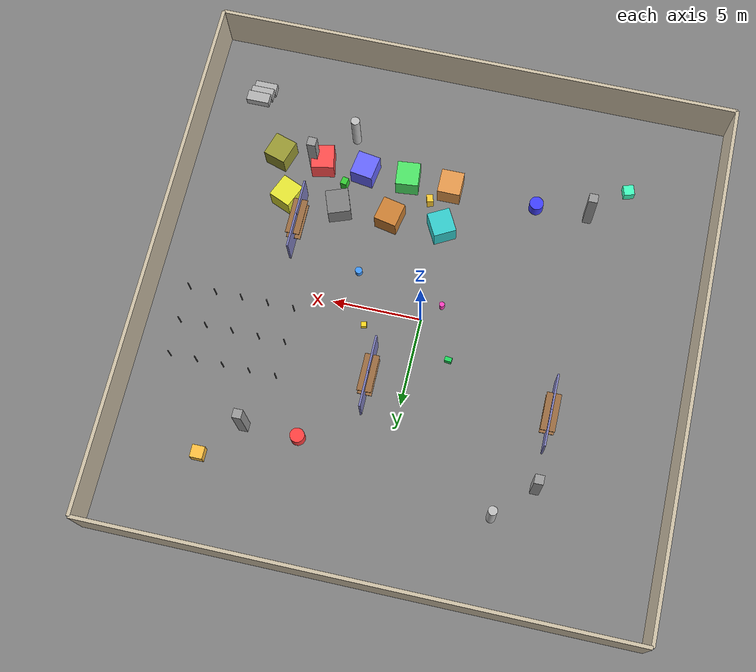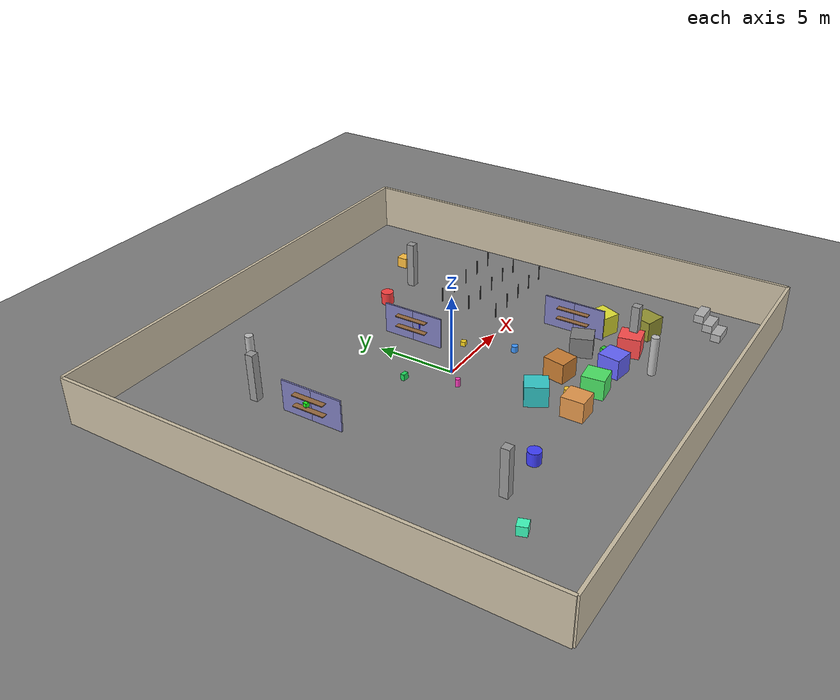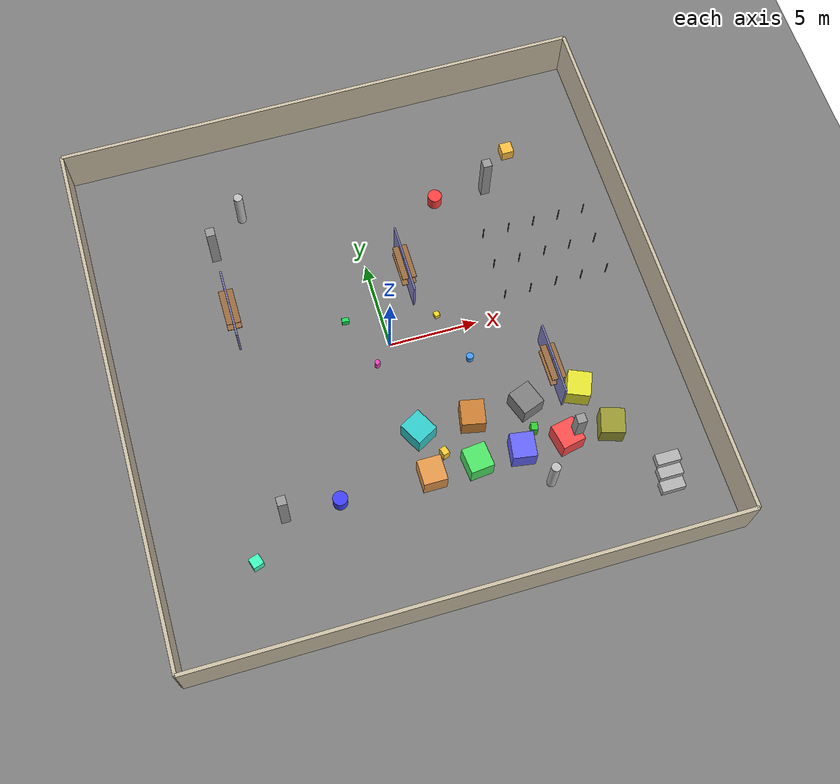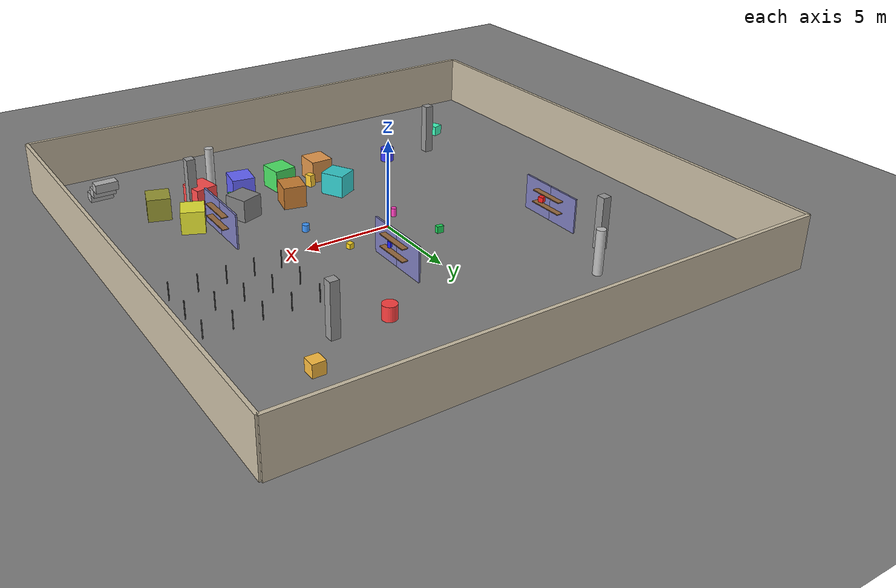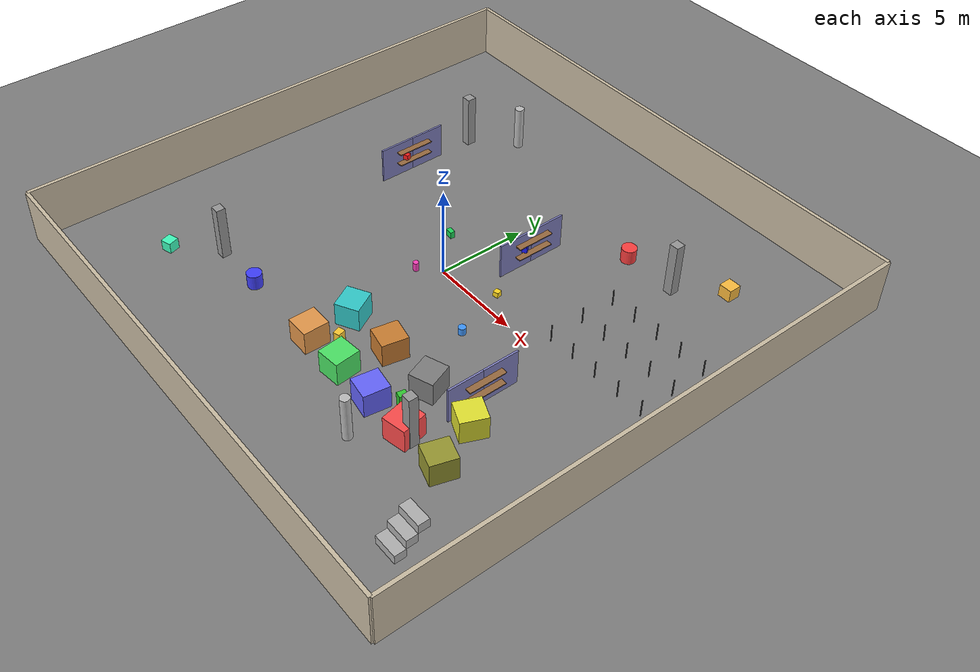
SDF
<?xml version="1.0" ?>
<sdf version="1.8">
  <world name="warehouse">
    <physics name="1ms" type="bullet-featherstone">
      <max_step_size>0.002</max_step_size>
      <real_time_factor>1.0</real_time_factor>
    </physics>

    <plugin filename="gz-sim-physics-system" name="gz::sim::systems::Physics"></plugin>
    <plugin filename="gz-sim-sensors-system" name="gz::sim::systems::Sensors">
      <render_engine>ogre</render_engine>
    </plugin>
    <plugin filename="gz-sim-imu-system" name="gz::sim::systems::Imu"></plugin>
    <plugin filename="gz-sim-user-commands-system" name="gz::sim::systems::UserCommands"></plugin>
    <plugin filename="gz-sim-scene-broadcaster-system" name="gz::sim::systems::SceneBroadcaster"></plugin>
    <plugin filename="gz-sim-navsat-system" name="gz::sim::systems::NavSat"></plugin>

    <light type="directional" name="sun">
      <cast_shadows>true</cast_shadows>
      <pose>0 0 15 0 0 0</pose>
      <diffuse>0.9 0.9 0.9 1</diffuse>
      <specular>0.2 0.2 0.2 1</specular>
      <attenuation>
        <range>1000</range>
        <constant>0.9</constant>
        <linear>0.01</linear>
        <quadratic>0.001</quadratic>
      </attenuation>
      <direction>-0.4 0.3 -1</direction>
    </light>

    <!-- Ground -->
    <model name="ground_plane">
      <static>true</static>
      <link name="link">
        <collision name="collision">
          <geometry><plane><normal>0 0 1</normal><size>200 200</size></plane></geometry>
        </collision>
        <visual name="visual">
          <geometry><plane><normal>0 0 1</normal><size>200 200</size></plane></geometry>
          <material>
            <ambient>0.3 0.3 0.3 1</ambient>
            <diffuse>0.5 0.5 0.5 1</diffuse>
          </material>
        </visual>
      </link>
    </model>

    <!-- ===== Warehouse Walls ===== -->
    <model name="wall_north"><static>true</static><pose>0 15 1.5 0 0 0</pose>
      <link name="link"><collision name="c"><geometry><box><size>30 0.2 3</size></box></geometry></collision>
      <visual name="v"><geometry><box><size>30 0.2 3</size></box></geometry>
      <material><ambient>0.7 0.65 0.55 1</ambient><diffuse>0.8 0.75 0.65 1</diffuse></material></visual></link></model>

    <model name="wall_south"><static>true</static><pose>0 -15 1.5 0 0 0</pose>
      <link name="link"><collision name="c"><geometry><box><size>30 0.2 3</size></box></geometry></collision>
      <visual name="v"><geometry><box><size>30 0.2 3</size></box></geometry>
      <material><ambient>0.7 0.65 0.55 1</ambient><diffuse>0.8 0.75 0.65 1</diffuse></material></visual></link></model>

    <model name="wall_east"><static>true</static><pose>15 0 1.5 0 0 0</pose>
      <link name="link"><collision name="c"><geometry><box><size>0.2 30 3</size></box></geometry></collision>
      <visual name="v"><geometry><box><size>0.2 30 3</size></box></geometry>
      <material><ambient>0.7 0.65 0.55 1</ambient><diffuse>0.8 0.75 0.65 1</diffuse></material></visual></link></model>

    <model name="wall_west"><static>true</static><pose>-15 0 1.5 0 0 0</pose>
      <link name="link"><collision name="c"><geometry><box><size>0.2 30 3</size></box></geometry></collision>
      <visual name="v"><geometry><box><size>0.2 30 3</size></box></geometry>
      <material><ambient>0.7 0.65 0.55 1</ambient><diffuse>0.8 0.75 0.65 1</diffuse></material></visual></link></model>

    <!-- ===== Shelving Racks (rows of shelves for LiDAR features) ===== -->
    <!-- Row 1 -->
    <model name="rack1_col1"><static>true</static><pose>-8 5 1.0 0 0 0</pose>
      <link name="link"><collision name="c"><geometry><box><size>0.1 2 2</size></box></geometry></collision>
      <visual name="v"><geometry><box><size>0.1 2 2</size></box></geometry>
      <material><ambient>0.4 0.4 0.6 1</ambient><diffuse>0.5 0.5 0.75 1</diffuse></material></visual></link></model>
    <model name="rack1_col2"><static>true</static><pose>-8 3 1.0 0 0 0</pose>
      <link name="link"><collision name="c"><geometry><box><size>0.1 2 2</size></box></geometry></collision>
      <visual name="v"><geometry><box><size>0.1 2 2</size></box></geometry>
      <material><ambient>0.4 0.4 0.6 1</ambient><diffuse>0.5 0.5 0.75 1</diffuse></material></visual></link></model>
    <model name="rack1_shelf1"><static>true</static><pose>-8 4 0.8 0 0 0</pose>
      <link name="link"><collision name="c"><geometry><box><size>0.8 2.1 0.05</size></box></geometry></collision>
      <visual name="v"><geometry><box><size>0.8 2.1 0.05</size></box></geometry>
      <material><ambient>0.5 0.35 0.2 1</ambient><diffuse>0.6 0.42 0.25 1</diffuse></material></visual></link></model>
    <model name="rack1_shelf2"><static>true</static><pose>-8 4 1.5 0 0 0</pose>
      <link name="link"><collision name="c"><geometry><box><size>0.8 2.1 0.05</size></box></geometry></collision>
      <visual name="v"><geometry><box><size>0.8 2.1 0.05</size></box></geometry>
      <material><ambient>0.5 0.35 0.2 1</ambient><diffuse>0.6 0.42 0.25 1</diffuse></material></visual></link></model>

    <!-- Row 2 -->
    <model name="rack2_col1"><static>true</static><pose>2 5 1.0 0 0 0</pose>
      <link name="link"><collision name="c"><geometry><box><size>0.1 2 2</size></box></geometry></collision>
      <visual name="v"><geometry><box><size>0.1 2 2</size></box></geometry>
      <material><ambient>0.4 0.4 0.6 1</ambient><diffuse>0.5 0.5 0.75 1</diffuse></material></visual></link></model>
    <model name="rack2_col2"><static>true</static><pose>2 3 1.0 0 0 0</pose>
      <link name="link"><collision name="c"><geometry><box><size>0.1 2 2</size></box></geometry></collision>
      <visual name="v"><geometry><box><size>0.1 2 2</size></box></geometry>
      <material><ambient>0.4 0.4 0.6 1</ambient><diffuse>0.5 0.5 0.75 1</diffuse></material></visual></link></model>
    <model name="rack2_shelf1"><static>true</static><pose>2 4 0.8 0 0 0</pose>
      <link name="link"><collision name="c"><geometry><box><size>0.8 2.1 0.05</size></box></geometry></collision>
      <visual name="v"><geometry><box><size>0.8 2.1 0.05</size></box></geometry>
      <material><ambient>0.5 0.35 0.2 1</ambient><diffuse>0.6 0.42 0.25 1</diffuse></material></visual></link></model>
    <model name="rack2_shelf2"><static>true</static><pose>2 4 1.5 0 0 0</pose>
      <link name="link"><collision name="c"><geometry><box><size>0.8 2.1 0.05</size></box></geometry></collision>
      <visual name="v"><geometry><box><size>0.8 2.1 0.05</size></box></geometry>
      <material><ambient>0.5 0.35 0.2 1</ambient><diffuse>0.6 0.42 0.25 1</diffuse></material></visual></link></model>

    <!-- Row 3 (opposite side) -->
    <model name="rack3_col1"><static>true</static><pose>8 -5 1.0 0 0 0</pose>
      <link name="link"><collision name="c"><geometry><box><size>0.1 2 2</size></box></geometry></collision>
      <visual name="v"><geometry><box><size>0.1 2 2</size></box></geometry>
      <material><ambient>0.4 0.4 0.6 1</ambient><diffuse>0.5 0.5 0.75 1</diffuse></material></visual></link></model>
    <model name="rack3_col2"><static>true</static><pose>8 -3 1.0 0 0 0</pose>
      <link name="link"><collision name="c"><geometry><box><size>0.1 2 2</size></box></geometry></collision>
      <visual name="v"><geometry><box><size>0.1 2 2</size></box></geometry>
      <material><ambient>0.4 0.4 0.6 1</ambient><diffuse>0.5 0.5 0.75 1</diffuse></material></visual></link></model>
    <model name="rack3_shelf1"><static>true</static><pose>8 -4 0.8 0 0 0</pose>
      <link name="link"><collision name="c"><geometry><box><size>0.8 2.1 0.05</size></box></geometry></collision>
      <visual name="v"><geometry><box><size>0.8 2.1 0.05</size></box></geometry>
      <material><ambient>0.5 0.35 0.2 1</ambient><diffuse>0.6 0.42 0.25 1</diffuse></material></visual></link></model>
    <model name="rack3_shelf2"><static>true</static><pose>8 -4 1.5 0 0 0</pose>
      <link name="link"><collision name="c"><geometry><box><size>0.8 2.1 0.05</size></box></geometry></collision>
      <visual name="v"><geometry><box><size>0.8 2.1 0.05</size></box></geometry>
      <material><ambient>0.5 0.35 0.2 1</ambient><diffuse>0.6 0.42 0.25 1</diffuse></material></visual></link></model>

    <!-- ===== Boxes on shelves (visual features for camera + LiDAR) ===== -->
    <model name="box_shelf1"><static>true</static><pose>-7.8 3.5 1.1 0 0 0.3</pose>
      <link name="link"><collision name="c"><geometry><box><size>0.3 0.3 0.3</size></box></geometry></collision>
      <visual name="v"><geometry><box><size>0.3 0.3 0.3</size></box></geometry>
      <material><ambient>0.9 0.1 0.1 1</ambient><diffuse>1.0 0.12 0.12 1</diffuse></material></visual></link></model>
    <model name="box_shelf2"><static>true</static><pose>-8.2 4.2 1.1 0 0 -0.2</pose>
      <link name="link"><collision name="c"><geometry><box><size>0.25 0.25 0.25</size></box></geometry></collision>
      <visual name="v"><geometry><box><size>0.25 0.25 0.25</size></box></geometry>
      <material><ambient>0.1 0.8 0.1 1</ambient><diffuse>0.12 1.0 0.12 1</diffuse></material></visual></link></model>
    <model name="box_shelf3"><static>true</static><pose>2.1 3.5 1.1 0 0 0.5</pose>
      <link name="link"><collision name="c"><geometry><box><size>0.3 0.2 0.35</size></box></geometry></collision>
      <visual name="v"><geometry><box><size>0.3 0.2 0.35</size></box></geometry>
      <material><ambient>0.1 0.1 0.9 1</ambient><diffuse>0.12 0.12 1.0 1</diffuse></material></visual></link></model>

    <!-- ===== Scattered objects for LiDAR features ===== -->
    <model name="barrel_red"><static>true</static><pose>5 8 0.4 0 0 0</pose>
      <link name="link"><collision name="c"><geometry><cylinder><radius>0.4</radius><length>0.8</length></cylinder></geometry></collision>
      <visual name="v"><geometry><cylinder><radius>0.4</radius><length>0.8</length></cylinder></geometry>
      <material><ambient>0.9 0.2 0.2 1</ambient><diffuse>1.0 0.25 0.25 1</diffuse></material></visual></link></model>
    <model name="barrel_blue"><static>true</static><pose>-5 -8 0.4 0 0 0</pose>
      <link name="link"><collision name="c"><geometry><cylinder><radius>0.4</radius><length>0.8</length></cylinder></geometry></collision>
      <visual name="v"><geometry><cylinder><radius>0.4</radius><length>0.8</length></cylinder></geometry>
      <material><ambient>0.2 0.2 0.9 1</ambient><diffuse>0.25 0.25 1.0 1</diffuse></material></visual></link></model>

    <model name="crate1"><static>true</static><pose>10 10 0.35 0 0 0</pose>
      <link name="link"><collision name="c"><geometry><box><size>0.7 0.7 0.7</size></box></geometry></collision>
      <visual name="v"><geometry><box><size>0.7 0.7 0.7</size></box></geometry>
      <material><ambient>0.8 0.6 0.2 1</ambient><diffuse>1.0 0.75 0.25 1</diffuse></material></visual></link></model>
    <model name="crate2"><static>true</static><pose>-10 -10 0.35 0 0 0.3</pose>
      <link name="link"><collision name="c"><geometry><box><size>0.6 0.6 0.6</size></box></geometry></collision>
      <visual name="v"><geometry><box><size>0.6 0.6 0.6</size></box></geometry>
      <material><ambient>0.2 0.8 0.6 1</ambient><diffuse>0.25 1.0 0.75 1</diffuse></material></visual></link></model>

    <model name="pillar1"><static>true</static><pose>6 -10 1.25 0 0 0</pose>
      <link name="link"><collision name="c"><geometry><cylinder><radius>0.25</radius><length>2.5</length></cylinder></geometry></collision>
      <visual name="v"><geometry><cylinder><radius>0.25</radius><length>2.5</length></cylinder></geometry>
      <material><ambient>0.6 0.6 0.6 1</ambient><diffuse>0.75 0.75 0.75 1</diffuse></material></visual></link></model>
    <model name="pillar2"><static>true</static><pose>-6 10 1.25 0 0 0</pose>
      <link name="link"><collision name="c"><geometry><cylinder><radius>0.25</radius><length>2.5</length></cylinder></geometry></collision>
      <visual name="v"><geometry><cylinder><radius>0.25</radius><length>2.5</length></cylinder></geometry>
      <material><ambient>0.6 0.6 0.6 1</ambient><diffuse>0.75 0.75 0.75 1</diffuse></material></visual></link></model>

    <!-- Small scattered objects near center for close-range features -->
    <model name="small_box1"><static>true</static><pose>3 1 0.15 0 0 0.2</pose>
      <link name="link"><collision name="c"><geometry><box><size>0.3 0.3 0.3</size></box></geometry></collision>
      <visual name="v"><geometry><box><size>0.3 0.3 0.3</size></box></geometry>
      <material><ambient>0.9 0.7 0.1 1</ambient><diffuse>1.0 0.85 0.12 1</diffuse></material></visual></link></model>
    <model name="small_box2"><static>true</static><pose>-2 2 0.2 0 0 -0.1</pose>
      <link name="link"><collision name="c"><geometry><box><size>0.4 0.25 0.4</size></box></geometry></collision>
      <visual name="v"><geometry><box><size>0.4 0.25 0.4</size></box></geometry>
      <material><ambient>0.1 0.7 0.3 1</ambient><diffuse>0.12 0.85 0.36 1</diffuse></material></visual></link></model>
    <model name="small_cylinder1"><static>true</static><pose>-1 -1 0.25 0 0 0</pose>
      <link name="link"><collision name="c"><geometry><cylinder><radius>0.15</radius><length>0.5</length></cylinder></geometry></collision>
      <visual name="v"><geometry><cylinder><radius>0.15</radius><length>0.5</length></cylinder></geometry>
      <material><ambient>0.8 0.2 0.6 1</ambient><diffuse>1.0 0.25 0.75 1</diffuse></material></visual></link></model>
    <model name="small_cylinder2"><static>true</static><pose>4 -2 0.2 0 0 0</pose>
      <link name="link"><collision name="c"><geometry><cylinder><radius>0.2</radius><length>0.4</length></cylinder></geometry></collision>
      <visual name="v"><geometry><cylinder><radius>0.2</radius><length>0.4</length></cylinder></geometry>
      <material><ambient>0.2 0.5 0.9 1</ambient><diffuse>0.25 0.6 1.0 1</diffuse></material></visual></link></model>

    <!-- ===== Box Stacks (rows of boxes for LiDAR features) ===== -->
    <!-- Row A (y=-8) -->
    <model name="boxstack_a1"><static>true</static><pose>0 -8 0.65 0 0 0</pose>
      <link name="link"><collision name="c"><geometry><box><size>1.3 1.4 1.3</size></box></geometry></collision>
      <visual name="v"><geometry><box><size>1.3 1.4 1.3</size></box></geometry>
      <material><ambient>0.8 0.5 0.2 1</ambient><diffuse>0.9 0.6 0.3 1</diffuse></material></visual></link></model>
    <model name="boxstack_a2"><static>true</static><pose>2.5 -8 0.65 0 0 0.1</pose>
      <link name="link"><collision name="c"><geometry><box><size>1.3 1.4 1.3</size></box></geometry></collision>
      <visual name="v"><geometry><box><size>1.3 1.4 1.3</size></box></geometry>
      <material><ambient>0.2 0.8 0.3 1</ambient><diffuse>0.3 0.9 0.4 1</diffuse></material></visual></link></model>
    <model name="boxstack_a3"><static>true</static><pose>5 -8 0.65 0 0 -0.15</pose>
      <link name="link"><collision name="c"><geometry><box><size>1.3 1.4 1.3</size></box></geometry></collision>
      <visual name="v"><geometry><box><size>1.3 1.4 1.3</size></box></geometry>
      <material><ambient>0.3 0.3 0.9 1</ambient><diffuse>0.4 0.4 1.0 1</diffuse></material></visual></link></model>
    <model name="boxstack_a4"><static>true</static><pose>7.5 -8 0.65 0 0 0.2</pose>
      <link name="link"><collision name="c"><geometry><box><size>1.3 1.4 1.3</size></box></geometry></collision>
      <visual name="v"><geometry><box><size>1.3 1.4 1.3</size></box></geometry>
      <material><ambient>0.9 0.2 0.2 1</ambient><diffuse>1.0 0.3 0.3 1</diffuse></material></visual></link></model>
    <model name="boxstack_a5"><static>true</static><pose>10 -8 0.65 0 0 -0.3</pose>
      <link name="link"><collision name="c"><geometry><box><size>1.3 1.4 1.3</size></box></geometry></collision>
      <visual name="v"><geometry><box><size>1.3 1.4 1.3</size></box></geometry>
      <material><ambient>0.5 0.5 0.1 1</ambient><diffuse>0.6 0.6 0.2 1</diffuse></material></visual></link></model>

    <!-- Row B (y=-5.5) -->
    <model name="boxstack_b1"><static>true</static><pose>0 -5.5 0.65 0 0 0.5</pose>
      <link name="link"><collision name="c"><geometry><box><size>1.3 1.4 1.3</size></box></geometry></collision>
      <visual name="v"><geometry><box><size>1.3 1.4 1.3</size></box></geometry>
      <material><ambient>0.1 0.7 0.7 1</ambient><diffuse>0.2 0.8 0.8 1</diffuse></material></visual></link></model>
    <model name="boxstack_b2"><static>true</static><pose>3 -5.5 0.65 0 0 -0.2</pose>
      <link name="link"><collision name="c"><geometry><box><size>1.3 1.4 1.3</size></box></geometry></collision>
      <visual name="v"><geometry><box><size>1.3 1.4 1.3</size></box></geometry>
      <material><ambient>0.7 0.4 0.1 1</ambient><diffuse>0.8 0.5 0.2 1</diffuse></material></visual></link></model>
    <model name="boxstack_b3"><static>true</static><pose>6 -5.5 0.65 0 0 0.35</pose>
      <link name="link"><collision name="c"><geometry><box><size>1.3 1.4 1.3</size></box></geometry></collision>
      <visual name="v"><geometry><box><size>1.3 1.4 1.3</size></box></geometry>
      <material><ambient>0.4 0.4 0.4 1</ambient><diffuse>0.5 0.5 0.5 1</diffuse></material></visual></link></model>
    <model name="boxstack_b4"><static>true</static><pose>9 -5.5 0.65 0 0 -0.4</pose>
      <link name="link"><collision name="c"><geometry><box><size>1.3 1.4 1.3</size></box></geometry></collision>
      <visual name="v"><geometry><box><size>1.3 1.4 1.3</size></box></geometry>
      <material><ambient>0.8 0.8 0.1 1</ambient><diffuse>0.9 0.9 0.2 1</diffuse></material></visual></link></model>

    <!-- ===== Interior Pillars ===== -->
    <model name="pillar_ne"><static>true</static><pose>8 8 1.5 0 0 0</pose>
      <link name="link"><collision name="c"><geometry><box><size>0.5 0.5 3</size></box></geometry></collision>
      <visual name="v"><geometry><box><size>0.5 0.5 3</size></box></geometry>
      <material><ambient>0.5 0.5 0.5 1</ambient><diffuse>0.6 0.6 0.6 1</diffuse></material></visual></link></model>
    <model name="pillar_nw"><static>true</static><pose>-8 8 1.5 0 0 0</pose>
      <link name="link"><collision name="c"><geometry><box><size>0.5 0.5 3</size></box></geometry></collision>
      <visual name="v"><geometry><box><size>0.5 0.5 3</size></box></geometry>
      <material><ambient>0.5 0.5 0.5 1</ambient><diffuse>0.6 0.6 0.6 1</diffuse></material></visual></link></model>
    <model name="pillar_se"><static>true</static><pose>8 -8 1.5 0 0 0</pose>
      <link name="link"><collision name="c"><geometry><box><size>0.5 0.5 3</size></box></geometry></collision>
      <visual name="v"><geometry><box><size>0.5 0.5 3</size></box></geometry>
      <material><ambient>0.5 0.5 0.5 1</ambient><diffuse>0.6 0.6 0.6 1</diffuse></material></visual></link></model>
    <model name="pillar_sw"><static>true</static><pose>-8 -8 1.5 0 0 0</pose>
      <link name="link"><collision name="c"><geometry><box><size>0.5 0.5 3</size></box></geometry></collision>
      <visual name="v"><geometry><box><size>0.5 0.5 3</size></box></geometry>
      <material><ambient>0.5 0.5 0.5 1</ambient><diffuse>0.6 0.6 0.6 1</diffuse></material></visual></link></model>

    <!-- ===== Shelf Cylinders (thin rack structures, 3 rows x 5 cols) ===== -->
    <!-- Row 1 (y=1) -->
    <model name="scyl_1a"><static>true</static><pose>7 1 0.5 0 0 0</pose>
      <link name="link"><collision name="c"><geometry><cylinder><radius>0.03</radius><length>1</length></cylinder></geometry></collision>
      <visual name="v"><geometry><cylinder><radius>0.03</radius><length>1</length></cylinder></geometry>
      <material><ambient>0.3 0.3 0.3 1</ambient><diffuse>0.4 0.4 0.4 1</diffuse></material></visual></link></model>
    <model name="scyl_1b"><static>true</static><pose>8.5 1 0.5 0 0 0</pose>
      <link name="link"><collision name="c"><geometry><cylinder><radius>0.03</radius><length>1</length></cylinder></geometry></collision>
      <visual name="v"><geometry><cylinder><radius>0.03</radius><length>1</length></cylinder></geometry>
      <material><ambient>0.3 0.3 0.3 1</ambient><diffuse>0.4 0.4 0.4 1</diffuse></material></visual></link></model>
    <model name="scyl_1c"><static>true</static><pose>10 1 0.5 0 0 0</pose>
      <link name="link"><collision name="c"><geometry><cylinder><radius>0.03</radius><length>1</length></cylinder></geometry></collision>
      <visual name="v"><geometry><cylinder><radius>0.03</radius><length>1</length></cylinder></geometry>
      <material><ambient>0.3 0.3 0.3 1</ambient><diffuse>0.4 0.4 0.4 1</diffuse></material></visual></link></model>
    <model name="scyl_1d"><static>true</static><pose>11.5 1 0.5 0 0 0</pose>
      <link name="link"><collision name="c"><geometry><cylinder><radius>0.03</radius><length>1</length></cylinder></geometry></collision>
      <visual name="v"><geometry><cylinder><radius>0.03</radius><length>1</length></cylinder></geometry>
      <material><ambient>0.3 0.3 0.3 1</ambient><diffuse>0.4 0.4 0.4 1</diffuse></material></visual></link></model>
    <model name="scyl_1e"><static>true</static><pose>13 1 0.5 0 0 0</pose>
      <link name="link"><collision name="c"><geometry><cylinder><radius>0.03</radius><length>1</length></cylinder></geometry></collision>
      <visual name="v"><geometry><cylinder><radius>0.03</radius><length>1</length></cylinder></geometry>
      <material><ambient>0.3 0.3 0.3 1</ambient><diffuse>0.4 0.4 0.4 1</diffuse></material></visual></link></model>

    <!-- Row 2 (y=3) -->
    <model name="scyl_2a"><static>true</static><pose>7 3 0.5 0 0 0</pose>
      <link name="link"><collision name="c"><geometry><cylinder><radius>0.03</radius><length>1</length></cylinder></geometry></collision>
      <visual name="v"><geometry><cylinder><radius>0.03</radius><length>1</length></cylinder></geometry>
      <material><ambient>0.3 0.3 0.3 1</ambient><diffuse>0.4 0.4 0.4 1</diffuse></material></visual></link></model>
    <model name="scyl_2b"><static>true</static><pose>8.5 3 0.5 0 0 0</pose>
      <link name="link"><collision name="c"><geometry><cylinder><radius>0.03</radius><length>1</length></cylinder></geometry></collision>
      <visual name="v"><geometry><cylinder><radius>0.03</radius><length>1</length></cylinder></geometry>
      <material><ambient>0.3 0.3 0.3 1</ambient><diffuse>0.4 0.4 0.4 1</diffuse></material></visual></link></model>
    <model name="scyl_2c"><static>true</static><pose>10 3 0.5 0 0 0</pose>
      <link name="link"><collision name="c"><geometry><cylinder><radius>0.03</radius><length>1</length></cylinder></geometry></collision>
      <visual name="v"><geometry><cylinder><radius>0.03</radius><length>1</length></cylinder></geometry>
      <material><ambient>0.3 0.3 0.3 1</ambient><diffuse>0.4 0.4 0.4 1</diffuse></material></visual></link></model>
    <model name="scyl_2d"><static>true</static><pose>11.5 3 0.5 0 0 0</pose>
      <link name="link"><collision name="c"><geometry><cylinder><radius>0.03</radius><length>1</length></cylinder></geometry></collision>
      <visual name="v"><geometry><cylinder><radius>0.03</radius><length>1</length></cylinder></geometry>
      <material><ambient>0.3 0.3 0.3 1</ambient><diffuse>0.4 0.4 0.4 1</diffuse></material></visual></link></model>
    <model name="scyl_2e"><static>true</static><pose>13 3 0.5 0 0 0</pose>
      <link name="link"><collision name="c"><geometry><cylinder><radius>0.03</radius><length>1</length></cylinder></geometry></collision>
      <visual name="v"><geometry><cylinder><radius>0.03</radius><length>1</length></cylinder></geometry>
      <material><ambient>0.3 0.3 0.3 1</ambient><diffuse>0.4 0.4 0.4 1</diffuse></material></visual></link></model>

    <!-- Row 3 (y=5) -->
    <model name="scyl_3a"><static>true</static><pose>7 5 0.5 0 0 0</pose>
      <link name="link"><collision name="c"><geometry><cylinder><radius>0.03</radius><length>1</length></cylinder></geometry></collision>
      <visual name="v"><geometry><cylinder><radius>0.03</radius><length>1</length></cylinder></geometry>
      <material><ambient>0.3 0.3 0.3 1</ambient><diffuse>0.4 0.4 0.4 1</diffuse></material></visual></link></model>
    <model name="scyl_3b"><static>true</static><pose>8.5 5 0.5 0 0 0</pose>
      <link name="link"><collision name="c"><geometry><cylinder><radius>0.03</radius><length>1</length></cylinder></geometry></collision>
      <visual name="v"><geometry><cylinder><radius>0.03</radius><length>1</length></cylinder></geometry>
      <material><ambient>0.3 0.3 0.3 1</ambient><diffuse>0.4 0.4 0.4 1</diffuse></material></visual></link></model>
    <model name="scyl_3c"><static>true</static><pose>10 5 0.5 0 0 0</pose>
      <link name="link"><collision name="c"><geometry><cylinder><radius>0.03</radius><length>1</length></cylinder></geometry></collision>
      <visual name="v"><geometry><cylinder><radius>0.03</radius><length>1</length></cylinder></geometry>
      <material><ambient>0.3 0.3 0.3 1</ambient><diffuse>0.4 0.4 0.4 1</diffuse></material></visual></link></model>
    <model name="scyl_3d"><static>true</static><pose>11.5 5 0.5 0 0 0</pose>
      <link name="link"><collision name="c"><geometry><cylinder><radius>0.03</radius><length>1</length></cylinder></geometry></collision>
      <visual name="v"><geometry><cylinder><radius>0.03</radius><length>1</length></cylinder></geometry>
      <material><ambient>0.3 0.3 0.3 1</ambient><diffuse>0.4 0.4 0.4 1</diffuse></material></visual></link></model>
    <model name="scyl_3e"><static>true</static><pose>13 5 0.5 0 0 0</pose>
      <link name="link"><collision name="c"><geometry><cylinder><radius>0.03</radius><length>1</length></cylinder></geometry></collision>
      <visual name="v"><geometry><cylinder><radius>0.03</radius><length>1</length></cylinder></geometry>
      <material><ambient>0.3 0.3 0.3 1</ambient><diffuse>0.4 0.4 0.4 1</diffuse></material></visual></link></model>

    <!-- ===== Stairs (3-step structure) ===== -->
    <model name="stairs1"><static>true</static><pose>12 -12 0.25 0 0 0</pose>
      <link name="link"><collision name="c"><geometry><box><size>1.3 0.6 0.5</size></box></geometry></collision>
      <visual name="v"><geometry><box><size>1.3 0.6 0.5</size></box></geometry>
      <material><ambient>0.6 0.6 0.6 1</ambient><diffuse>0.7 0.7 0.7 1</diffuse></material></visual></link></model>
    <model name="stairs2"><static>true</static><pose>12 -11.4 0.75 0 0 0</pose>
      <link name="link"><collision name="c"><geometry><box><size>1.3 0.6 0.5</size></box></geometry></collision>
      <visual name="v"><geometry><box><size>1.3 0.6 0.5</size></box></geometry>
      <material><ambient>0.6 0.6 0.6 1</ambient><diffuse>0.7 0.7 0.7 1</diffuse></material></visual></link></model>
    <model name="stairs3"><static>true</static><pose>12 -10.8 1.25 0 0 0</pose>
      <link name="link"><collision name="c"><geometry><box><size>1.3 0.6 0.5</size></box></geometry></collision>
      <visual name="v"><geometry><box><size>1.3 0.6 0.5</size></box></geometry>
      <material><ambient>0.6 0.6 0.6 1</ambient><diffuse>0.7 0.7 0.7 1</diffuse></material></visual></link></model>

    <!-- ===== Pallet Movers ===== -->
    <model name="pallet_mover1"><static>true</static><pose>1 -7 0.42 0 0 0.3</pose>
      <link name="link"><collision name="c"><geometry><box><size>0.36 0.44 0.72</size></box></geometry></collision>
      <visual name="v"><geometry><box><size>0.36 0.44 0.72</size></box></geometry>
      <material><ambient>0.9 0.7 0.1 1</ambient><diffuse>1.0 0.8 0.2 1</diffuse></material></visual></link></model>
    <model name="pallet_mover2"><static>true</static><pose>6 -7 0.42 0 0 -0.2</pose>
      <link name="link"><collision name="c"><geometry><box><size>0.36 0.44 0.72</size></box></geometry></collision>
      <visual name="v"><geometry><box><size>0.36 0.44 0.72</size></box></geometry>
      <material><ambient>0.1 0.7 0.1 1</ambient><diffuse>0.2 0.8 0.2 1</diffuse></material></visual></link></model>
  </world>
</sdf>
